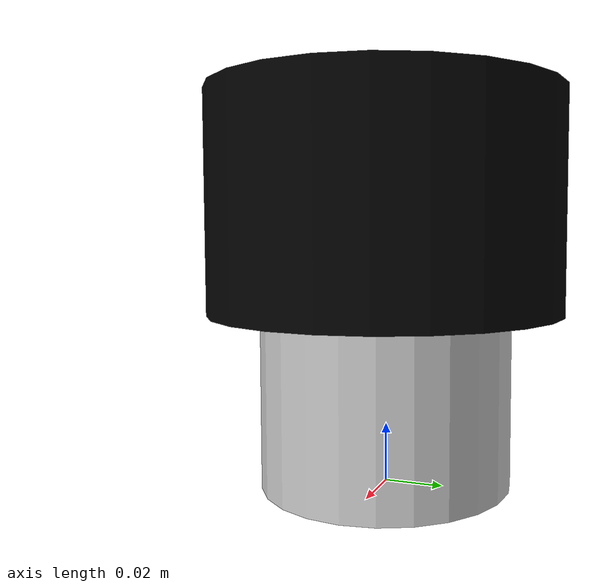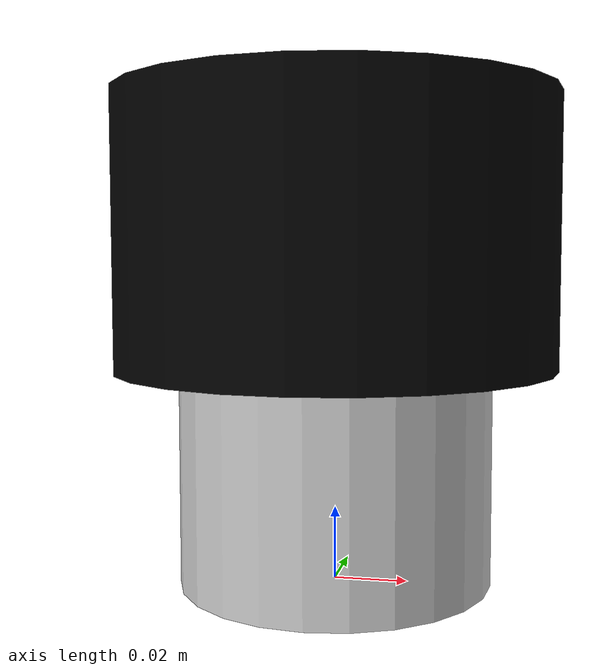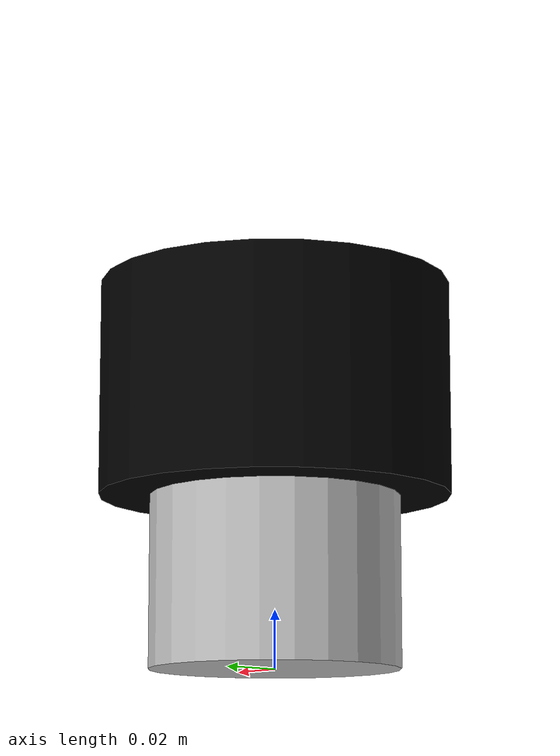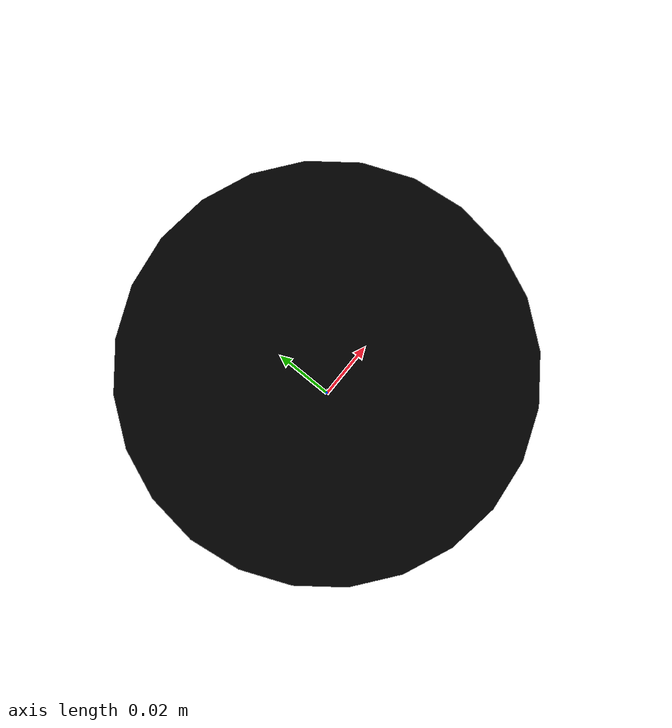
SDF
<?xml version='1.0'?>
<sdf version='1.6'>
  <model name='myrobot1'>
    <link name='base'>
      <pose frame=''>0 0 0.029335 0 -0 0</pose>
      <inertial>
        <mass>1.2</mass>
        <inertia>
          <ixx>0.00108747</ixx>
          <iyy>0.00108747</iyy>
          <izz>0.00109244</izz>
          <ixy>0</ixy>
          <ixz>0</ixz>
          <iyz>0</iyz>
        </inertia>
      </inertial>
      <self_collide>0</self_collide>
      <enable_wind>0</enable_wind>
      <kinematic>0</kinematic>
      <visual name='base_visual'>
        <geometry>
          <cylinder>
            <radius>0.04267</radius>
            <length>0.05867</length>
          </cylinder>
        </geometry>
        <pose frame=''>0 0 0 0 -0 0</pose>
        <transparency>0</transparency>
        <cast_shadows>1</cast_shadows>
      </visual>
      <collision name='base_collision'>
        <laser_retro>0</laser_retro>
        <max_contacts>10</max_contacts>
        <pose frame=''>0 0 0 0 -0 0</pose>
        <geometry>
          <cylinder>
            <radius>0.04267</radius>
            <length>0.05867</length>
          </cylinder>
        </geometry>
        <surface>
          <friction>
            <ode>
              <mu>1</mu>
              <mu2>1</mu2>
              <fdir1>0 0 0</fdir1>
              <slip1>0</slip1>
              <slip2>0</slip2>
            </ode>
            <torsional>
              <coefficient>1</coefficient>
              <patch_radius>0</patch_radius>
              <surface_radius>0</surface_radius>
              <use_patch_radius>1</use_patch_radius>
              <ode>
                <slip>0</slip>
              </ode>
            </torsional>
          </friction>
          <bounce>
            <restitution_coefficient>0</restitution_coefficient>
            <threshold>1e+06</threshold>
          </bounce>
          <contact>
            <collide_without_contact>0</collide_without_contact>
            <collide_without_contact_bitmask>1</collide_without_contact_bitmask>
            <collide_bitmask>1</collide_bitmask>
            <ode>
              <soft_cfm>0</soft_cfm>
              <soft_erp>0.2</soft_erp>
              <kp>1e+13</kp>
              <kd>1</kd>
              <max_vel>0.01</max_vel>
              <min_depth>0</min_depth>
            </ode>
            <bullet>
              <split_impulse>1</split_impulse>
              <split_impulse_penetration_threshold>-0.01</split_impulse_penetration_threshold>
              <soft_cfm>0</soft_cfm>
              <soft_erp>0.2</soft_erp>
              <kp>1e+13</kp>
              <kd>1</kd>
            </bullet>
          </contact>
        </surface>
      </collision>
    </link>
    <link name='top'>
      <pose frame=''>0 0 0.095455 0 -0 0</pose>
      <inertial>
        <mass>0.1</mass>
        <inertia>
          <ixx>9.062e-05</ixx>
          <iyy>9.062e-05</iyy>
          <izz>9.104e-05</izz>
          <ixy>0</ixy>
          <ixz>0</ixz>
          <iyz>0</iyz>
        </inertia>
        <pose frame=''>0 0 0 0 -0 0</pose>
      </inertial>
      <sensor name='sensor' type='ray'>
        <pose frame=''>0 0 -0 0 -0 0</pose>
        <visualize>1</visualize>
        <update_rate>30</update_rate>
        <ray>
          <scan>
            <horizontal>
              <samples>2</samples>
              <resolution>1</resolution>
              <min_angle>0</min_angle>
              <max_angle>1.5708</max_angle>
            </horizontal>
            <vertical>
              <samples>1</samples>
              <min_angle>0</min_angle>
              <max_angle>0</max_angle>
            </vertical>
          </scan>
          <range>
            <min>0.05</min>
            <max>70</max>
            <resolution>0.02</resolution>
          </range>
        </ray>
      </sensor>
      <self_collide>0</self_collide>
      <enable_wind>0</enable_wind>
      <kinematic>0</kinematic>
      <gravity>1</gravity>
      <visual name='top_visual'>
        <geometry>
          <cylinder>
            <radius>0.06</radius>
            <length>0.07357</length>
          </cylinder>
        </geometry>
        <pose frame=''>0 0 0 0 -0 0</pose>
        <transparency>0</transparency>
        <cast_shadows>1</cast_shadows>
        <material>
          <shader type='vertex'>
            <normal_map>__default__</normal_map>
          </shader>
          <script>
            <name>ModelPreview_4::top::top_visual_MATERIAL_</name>
          </script>
          <ambient>0 0 0 1</ambient>
          <diffuse>0 0 0 1</diffuse>
          <specular>0 0 0 1</specular>
          <emissive>0 0 0 1</emissive>
        </material>
      </visual>
      <collision name='top_collision'>
        <laser_retro>0</laser_retro>
        <max_contacts>10</max_contacts>
        <pose frame=''>0 0 0 0 -0 0</pose>
        <geometry>
          <cylinder>
            <radius>0.04267</radius>
            <length>0.07357</length>
          </cylinder>
        </geometry>
        <surface>
          <friction>
            <ode>
              <mu>1</mu>
              <mu2>1</mu2>
              <fdir1>0 0 0</fdir1>
              <slip1>0</slip1>
              <slip2>0</slip2>
            </ode>
            <torsional>
              <coefficient>1</coefficient>
              <patch_radius>0</patch_radius>
              <surface_radius>0</surface_radius>
              <use_patch_radius>1</use_patch_radius>
              <ode>
                <slip>0</slip>
              </ode>
            </torsional>
          </friction>
          <bounce>
            <restitution_coefficient>0</restitution_coefficient>
            <threshold>1e+06</threshold>
          </bounce>
          <contact>
            <collide_without_contact>0</collide_without_contact>
            <collide_without_contact_bitmask>1</collide_without_contact_bitmask>
            <collide_bitmask>1</collide_bitmask>
            <ode>
              <soft_cfm>0</soft_cfm>
              <soft_erp>0.2</soft_erp>
              <kp>1e+13</kp>
              <kd>1</kd>
              <max_vel>0.01</max_vel>
              <min_depth>0</min_depth>
            </ode>
            <bullet>
              <split_impulse>1</split_impulse>
              <split_impulse_penetration_threshold>-0.01</split_impulse_penetration_threshold>
              <soft_cfm>0</soft_cfm>
              <soft_erp>0.2</soft_erp>
              <kp>1e+13</kp>
              <kd>1</kd>
            </bullet>
          </contact>
        </surface>
      </collision>
    </link>
    <joint name='joint' type='revolute'>
      <parent>base</parent>
      <child>top</child>
      <pose frame=''>0 0 -0.036785 0 -0 0</pose>
      <axis>
        <xyz>0 0 1</xyz>
        <use_parent_model_frame>0</use_parent_model_frame>
        <limit>
          <lower>-1e+16</lower>
          <upper>1e+16</upper>
          <effort>-1</effort>
          <velocity>-1</velocity>
        </limit>
        <dynamics>
          <spring_reference>0</spring_reference>
          <spring_stiffness>0</spring_stiffness>
          <damping>0</damping>
          <friction>0</friction>
        </dynamics>
      </axis>
      <physics>
        <ode>
          <limit>
            <cfm>0</cfm>
            <erp>0.2</erp>
          </limit>
          <suspension>
            <cfm>0</cfm>
            <erp>0.2</erp>
          </suspension>
        </ode>
      </physics>
    </joint>
    <static>0</static>
    <allow_auto_disable>1</allow_auto_disable>
  </model>
</sdf>
